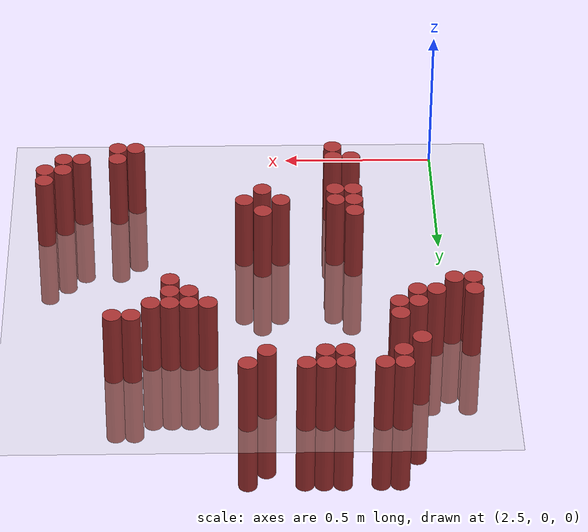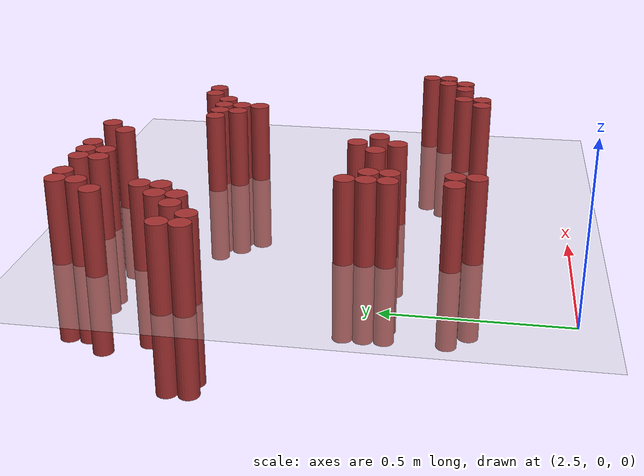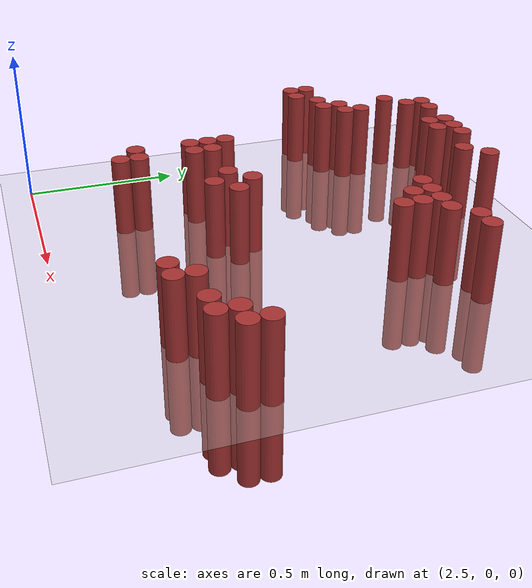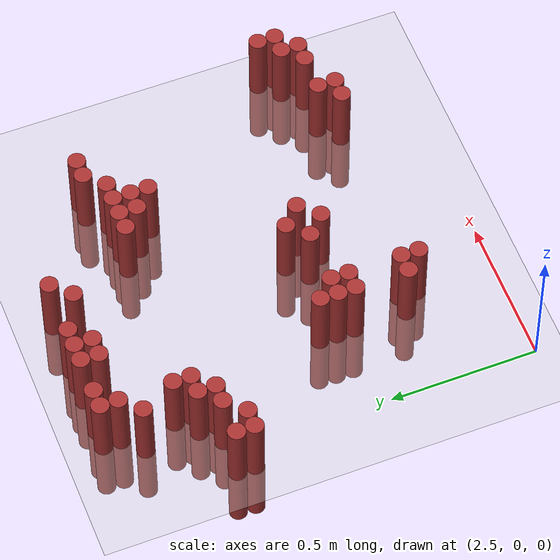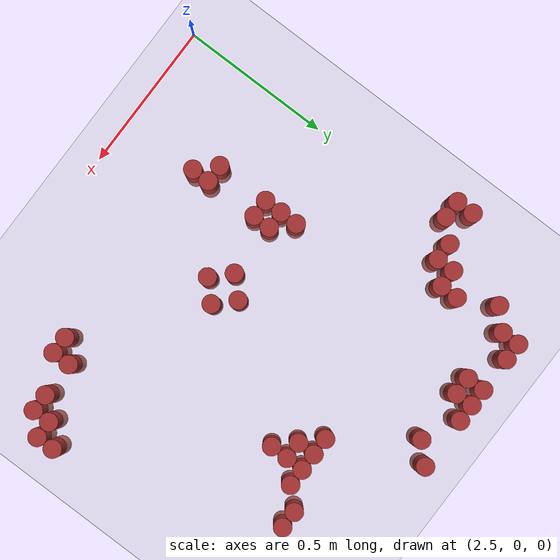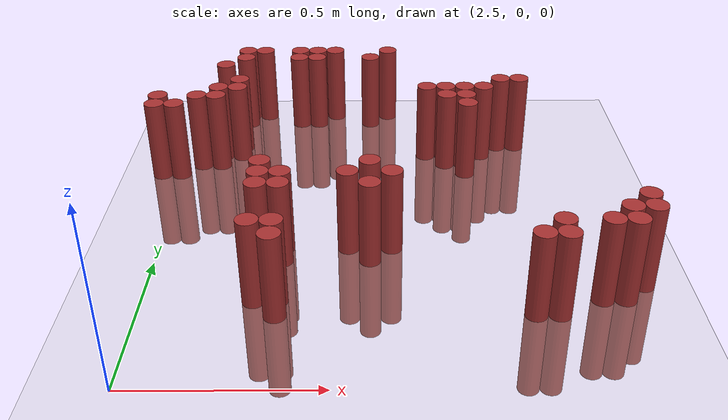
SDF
<sdf version="1.6">
 <world name="default">
  <model name="ground_plane">
   <static>1</static>
   <link name="link">
    <collision name="collision">
     <geometry><plane><normal>0 0 1</normal><size>100 100</size></plane></geometry>
     <surface><friction><ode><mu>100</mu><mu2>50</mu2></ode></friction></surface>
    </collision>
    <visual name="visual">
     <cast_shadows>0</cast_shadows>
     <geometry><plane><normal>0 0 1</normal><size>100 100</size></plane></geometry>
     <material>
      <script><uri>file://media/materials/scripts/gazebo.material</uri><name>Gazebo/Grey</name></script>
     </material>
    </visual>
   </link>
  </model>
  <model name="unit_cylinder_151">
   <static>1</static>
   <pose>2.670000 1.410000 0.000000 0.000000 0.000000 0.000000</pose>
   <link name="link">
    <inertial>
     <mass>1</mass>
     <inertia><ixx>0.145833</ixx><ixy>0</ixy><ixz>0</ixz><iyy>0.145833</iyy><iyz>0</iyz><izz>0.125</izz></inertia>
    </inertial>
    <collision name="collision">
     <geometry><cylinder><radius>0.030000</radius><length>0.5</length></cylinder></geometry>
    </collision>
    <visual name="visual">
     <geometry><cylinder><radius>0.030000</radius><length>0.5</length></cylinder></geometry>
     <material>
      <ambient>0.648000 0.192000 0.192000 1</ambient>
      <diffuse>0.648000 0.192000 0.192000 1</diffuse>
     </material>
     <material>
      <script><name>Gazebo/Grey</name><uri>file://media/materials/scripts/gazebo.material</uri></script>
     </material>
    </visual>
   </link>
  </model>
  <model name="unit_cylinder_152">
   <static>1</static>
   <pose>2.730000 1.410000 0.000000 0.000000 0.000000 0.000000</pose>
   <link name="link">
    <inertial>
     <mass>1</mass>
     <inertia><ixx>0.145833</ixx><ixy>0</ixy><ixz>0</ixz><iyy>0.145833</iyy><iyz>0</iyz><izz>0.125</izz></inertia>
    </inertial>
    <collision name="collision">
     <geometry><cylinder><radius>0.030000</radius><length>0.5</length></cylinder></geometry>
    </collision>
    <visual name="visual">
     <geometry><cylinder><radius>0.030000</radius><length>0.5</length></cylinder></geometry>
     <material>
      <ambient>0.648000 0.192000 0.192000 1</ambient>
      <diffuse>0.648000 0.192000 0.192000 1</diffuse>
     </material>
     <material>
      <script><name>Gazebo/Grey</name><uri>file://media/materials/scripts/gazebo.material</uri></script>
     </material>
    </visual>
   </link>
  </model>
  <model name="unit_cylinder_153">
   <static>1</static>
   <pose>2.850000 1.410000 0.000000 0.000000 0.000000 0.000000</pose>
   <link name="link">
    <inertial>
     <mass>1</mass>
     <inertia><ixx>0.145833</ixx><ixy>0</ixy><ixz>0</ixz><iyy>0.145833</iyy><iyz>0</iyz><izz>0.125</izz></inertia>
    </inertial>
    <collision name="collision">
     <geometry><cylinder><radius>0.030000</radius><length>0.5</length></cylinder></geometry>
    </collision>
    <visual name="visual">
     <geometry><cylinder><radius>0.030000</radius><length>0.5</length></cylinder></geometry>
     <material>
      <ambient>0.648000 0.192000 0.192000 1</ambient>
      <diffuse>0.648000 0.192000 0.192000 1</diffuse>
     </material>
     <material>
      <script><name>Gazebo/Grey</name><uri>file://media/materials/scripts/gazebo.material</uri></script>
     </material>
    </visual>
   </link>
  </model>
  <model name="unit_cylinder_154">
   <static>1</static>
   <pose>2.910000 1.410000 0.000000 0.000000 0.000000 0.000000</pose>
   <link name="link">
    <inertial>
     <mass>1</mass>
     <inertia><ixx>0.145833</ixx><ixy>0</ixy><ixz>0</ixz><iyy>0.145833</iyy><iyz>0</iyz><izz>0.125</izz></inertia>
    </inertial>
    <collision name="collision">
     <geometry><cylinder><radius>0.030000</radius><length>0.5</length></cylinder></geometry>
    </collision>
    <visual name="visual">
     <geometry><cylinder><radius>0.030000</radius><length>0.5</length></cylinder></geometry>
     <material>
      <ambient>0.648000 0.192000 0.192000 1</ambient>
      <diffuse>0.648000 0.192000 0.192000 1</diffuse>
     </material>
     <material>
      <script><name>Gazebo/Grey</name><uri>file://media/materials/scripts/gazebo.material</uri></script>
     </material>
    </visual>
   </link>
  </model>
  <model name="unit_cylinder_155">
   <static>1</static>
   <pose>2.970000 1.410000 0.000000 0.000000 0.000000 0.000000</pose>
   <link name="link">
    <inertial>
     <mass>1</mass>
     <inertia><ixx>0.145833</ixx><ixy>0</ixy><ixz>0</ixz><iyy>0.145833</iyy><iyz>0</iyz><izz>0.125</izz></inertia>
    </inertial>
    <collision name="collision">
     <geometry><cylinder><radius>0.030000</radius><length>0.5</length></cylinder></geometry>
    </collision>
    <visual name="visual">
     <geometry><cylinder><radius>0.030000</radius><length>0.5</length></cylinder></geometry>
     <material>
      <ambient>0.648000 0.192000 0.192000 1</ambient>
      <diffuse>0.648000 0.192000 0.192000 1</diffuse>
     </material>
     <material>
      <script><name>Gazebo/Grey</name><uri>file://media/materials/scripts/gazebo.material</uri></script>
     </material>
    </visual>
   </link>
  </model>
  <model name="unit_cylinder_156">
   <static>1</static>
   <pose>3.150000 1.410000 0.000000 0.000000 0.000000 0.000000</pose>
   <link name="link">
    <inertial>
     <mass>1</mass>
     <inertia><ixx>0.145833</ixx><ixy>0</ixy><ixz>0</ixz><iyy>0.145833</iyy><iyz>0</iyz><izz>0.125</izz></inertia>
    </inertial>
    <collision name="collision">
     <geometry><cylinder><radius>0.030000</radius><length>0.5</length></cylinder></geometry>
    </collision>
    <visual name="visual">
     <geometry><cylinder><radius>0.030000</radius><length>0.5</length></cylinder></geometry>
     <material>
      <ambient>0.648000 0.192000 0.192000 1</ambient>
      <diffuse>0.648000 0.192000 0.192000 1</diffuse>
     </material>
     <material>
      <script><name>Gazebo/Grey</name><uri>file://media/materials/scripts/gazebo.material</uri></script>
     </material>
    </visual>
   </link>
  </model>
  <model name="unit_cylinder_159">
   <static>1</static>
   <pose>2.670000 1.350000 0.000000 0.000000 0.000000 0.000000</pose>
   <link name="link">
    <inertial>
     <mass>1</mass>
     <inertia><ixx>0.145833</ixx><ixy>0</ixy><ixz>0</ixz><iyy>0.145833</iyy><iyz>0</iyz><izz>0.125</izz></inertia>
    </inertial>
    <collision name="collision">
     <geometry><cylinder><radius>0.030000</radius><length>0.5</length></cylinder></geometry>
    </collision>
    <visual name="visual">
     <geometry><cylinder><radius>0.030000</radius><length>0.5</length></cylinder></geometry>
     <material>
      <ambient>0.648000 0.192000 0.192000 1</ambient>
      <diffuse>0.648000 0.192000 0.192000 1</diffuse>
     </material>
     <material>
      <script><name>Gazebo/Grey</name><uri>file://media/materials/scripts/gazebo.material</uri></script>
     </material>
    </visual>
   </link>
  </model>
  <model name="unit_cylinder_160">
   <static>1</static>
   <pose>2.850000 1.350000 0.000000 0.000000 0.000000 0.000000</pose>
   <link name="link">
    <inertial>
     <mass>1</mass>
     <inertia><ixx>0.145833</ixx><ixy>0</ixy><ixz>0</ixz><iyy>0.145833</iyy><iyz>0</iyz><izz>0.125</izz></inertia>
    </inertial>
    <collision name="collision">
     <geometry><cylinder><radius>0.030000</radius><length>0.5</length></cylinder></geometry>
    </collision>
    <visual name="visual">
     <geometry><cylinder><radius>0.030000</radius><length>0.5</length></cylinder></geometry>
     <material>
      <ambient>0.648000 0.192000 0.192000 1</ambient>
      <diffuse>0.648000 0.192000 0.192000 1</diffuse>
     </material>
     <material>
      <script><name>Gazebo/Grey</name><uri>file://media/materials/scripts/gazebo.material</uri></script>
     </material>
    </visual>
   </link>
  </model>
  <model name="unit_cylinder_161">
   <static>1</static>
   <pose>2.910000 1.350000 0.000000 0.000000 0.000000 0.000000</pose>
   <link name="link">
    <inertial>
     <mass>1</mass>
     <inertia><ixx>0.145833</ixx><ixy>0</ixy><ixz>0</ixz><iyy>0.145833</iyy><iyz>0</iyz><izz>0.125</izz></inertia>
    </inertial>
    <collision name="collision">
     <geometry><cylinder><radius>0.030000</radius><length>0.5</length></cylinder></geometry>
    </collision>
    <visual name="visual">
     <geometry><cylinder><radius>0.030000</radius><length>0.5</length></cylinder></geometry>
     <material>
      <ambient>0.648000 0.192000 0.192000 1</ambient>
      <diffuse>0.648000 0.192000 0.192000 1</diffuse>
     </material>
     <material>
      <script><name>Gazebo/Grey</name><uri>file://media/materials/scripts/gazebo.material</uri></script>
     </material>
    </visual>
   </link>
  </model>
  <model name="unit_cylinder_162">
   <static>1</static>
   <pose>3.090000 1.350000 0.000000 0.000000 0.000000 0.000000</pose>
   <link name="link">
    <inertial>
     <mass>1</mass>
     <inertia><ixx>0.145833</ixx><ixy>0</ixy><ixz>0</ixz><iyy>0.145833</iyy><iyz>0</iyz><izz>0.125</izz></inertia>
    </inertial>
    <collision name="collision">
     <geometry><cylinder><radius>0.030000</radius><length>0.5</length></cylinder></geometry>
    </collision>
    <visual name="visual">
     <geometry><cylinder><radius>0.030000</radius><length>0.5</length></cylinder></geometry>
     <material>
      <ambient>0.648000 0.192000 0.192000 1</ambient>
      <diffuse>0.648000 0.192000 0.192000 1</diffuse>
     </material>
     <material>
      <script><name>Gazebo/Grey</name><uri>file://media/materials/scripts/gazebo.material</uri></script>
     </material>
    </visual>
   </link>
  </model>
  <model name="unit_cylinder_165">
   <static>1</static>
   <pose>2.610000 1.290000 0.000000 0.000000 0.000000 0.000000</pose>
   <link name="link">
    <inertial>
     <mass>1</mass>
     <inertia><ixx>0.145833</ixx><ixy>0</ixy><ixz>0</ixz><iyy>0.145833</iyy><iyz>0</iyz><izz>0.125</izz></inertia>
    </inertial>
    <collision name="collision">
     <geometry><cylinder><radius>0.030000</radius><length>0.5</length></cylinder></geometry>
    </collision>
    <visual name="visual">
     <geometry><cylinder><radius>0.030000</radius><length>0.5</length></cylinder></geometry>
     <material>
      <ambient>0.648000 0.192000 0.192000 1</ambient>
      <diffuse>0.648000 0.192000 0.192000 1</diffuse>
     </material>
     <material>
      <script><name>Gazebo/Grey</name><uri>file://media/materials/scripts/gazebo.material</uri></script>
     </material>
    </visual>
   </link>
  </model>
  <model name="unit_cylinder_171">
   <static>1</static>
   <pose>2.670000 1.170000 0.000000 0.000000 0.000000 0.000000</pose>
   <link name="link">
    <inertial>
     <mass>1</mass>
     <inertia><ixx>0.145833</ixx><ixy>0</ixy><ixz>0</ixz><iyy>0.145833</iyy><iyz>0</iyz><izz>0.125</izz></inertia>
    </inertial>
    <collision name="collision">
     <geometry><cylinder><radius>0.030000</radius><length>0.5</length></cylinder></geometry>
    </collision>
    <visual name="visual">
     <geometry><cylinder><radius>0.030000</radius><length>0.5</length></cylinder></geometry>
     <material>
      <ambient>0.648000 0.192000 0.192000 1</ambient>
      <diffuse>0.648000 0.192000 0.192000 1</diffuse>
     </material>
     <material>
      <script><name>Gazebo/Grey</name><uri>file://media/materials/scripts/gazebo.material</uri></script>
     </material>
    </visual>
   </link>
  </model>
  <model name="unit_cylinder_172">
   <static>1</static>
   <pose>3.510000 1.170000 0.000000 0.000000 0.000000 0.000000</pose>
   <link name="link">
    <inertial>
     <mass>1</mass>
     <inertia><ixx>0.145833</ixx><ixy>0</ixy><ixz>0</ixz><iyy>0.145833</iyy><iyz>0</iyz><izz>0.125</izz></inertia>
    </inertial>
    <collision name="collision">
     <geometry><cylinder><radius>0.030000</radius><length>0.5</length></cylinder></geometry>
    </collision>
    <visual name="visual">
     <geometry><cylinder><radius>0.030000</radius><length>0.5</length></cylinder></geometry>
     <material>
      <ambient>0.648000 0.192000 0.192000 1</ambient>
      <diffuse>0.648000 0.192000 0.192000 1</diffuse>
     </material>
     <material>
      <script><name>Gazebo/Grey</name><uri>file://media/materials/scripts/gazebo.material</uri></script>
     </material>
    </visual>
   </link>
  </model>
  <model name="unit_cylinder_173">
   <static>1</static>
   <pose>3.570000 1.170000 0.000000 0.000000 0.000000 0.000000</pose>
   <link name="link">
    <inertial>
     <mass>1</mass>
     <inertia><ixx>0.145833</ixx><ixy>0</ixy><ixz>0</ixz><iyy>0.145833</iyy><iyz>0</iyz><izz>0.125</izz></inertia>
    </inertial>
    <collision name="collision">
     <geometry><cylinder><radius>0.030000</radius><length>0.5</length></cylinder></geometry>
    </collision>
    <visual name="visual">
     <geometry><cylinder><radius>0.030000</radius><length>0.5</length></cylinder></geometry>
     <material>
      <ambient>0.648000 0.192000 0.192000 1</ambient>
      <diffuse>0.648000 0.192000 0.192000 1</diffuse>
     </material>
     <material>
      <script><name>Gazebo/Grey</name><uri>file://media/materials/scripts/gazebo.material</uri></script>
     </material>
    </visual>
   </link>
  </model>
  <model name="unit_cylinder_176">
   <static>1</static>
   <pose>2.610000 1.110000 0.000000 0.000000 0.000000 0.000000</pose>
   <link name="link">
    <inertial>
     <mass>1</mass>
     <inertia><ixx>0.145833</ixx><ixy>0</ixy><ixz>0</ixz><iyy>0.145833</iyy><iyz>0</iyz><izz>0.125</izz></inertia>
    </inertial>
    <collision name="collision">
     <geometry><cylinder><radius>0.030000</radius><length>0.5</length></cylinder></geometry>
    </collision>
    <visual name="visual">
     <geometry><cylinder><radius>0.030000</radius><length>0.5</length></cylinder></geometry>
     <material>
      <ambient>0.648000 0.192000 0.192000 1</ambient>
      <diffuse>0.648000 0.192000 0.192000 1</diffuse>
     </material>
     <material>
      <script><name>Gazebo/Grey</name><uri>file://media/materials/scripts/gazebo.material</uri></script>
     </material>
    </visual>
   </link>
  </model>
  <model name="unit_cylinder_177">
   <static>1</static>
   <pose>2.670000 1.110000 0.000000 0.000000 0.000000 0.000000</pose>
   <link name="link">
    <inertial>
     <mass>1</mass>
     <inertia><ixx>0.145833</ixx><ixy>0</ixy><ixz>0</ixz><iyy>0.145833</iyy><iyz>0</iyz><izz>0.125</izz></inertia>
    </inertial>
    <collision name="collision">
     <geometry><cylinder><radius>0.030000</radius><length>0.5</length></cylinder></geometry>
    </collision>
    <visual name="visual">
     <geometry><cylinder><radius>0.030000</radius><length>0.5</length></cylinder></geometry>
     <material>
      <ambient>0.648000 0.192000 0.192000 1</ambient>
      <diffuse>0.648000 0.192000 0.192000 1</diffuse>
     </material>
     <material>
      <script><name>Gazebo/Grey</name><uri>file://media/materials/scripts/gazebo.material</uri></script>
     </material>
    </visual>
   </link>
  </model>
  <model name="unit_cylinder_178">
   <static>1</static>
   <pose>3.270000 1.110000 0.000000 0.000000 0.000000 0.000000</pose>
   <link name="link">
    <inertial>
     <mass>1</mass>
     <inertia><ixx>0.145833</ixx><ixy>0</ixy><ixz>0</ixz><iyy>0.145833</iyy><iyz>0</iyz><izz>0.125</izz></inertia>
    </inertial>
    <collision name="collision">
     <geometry><cylinder><radius>0.030000</radius><length>0.5</length></cylinder></geometry>
    </collision>
    <visual name="visual">
     <geometry><cylinder><radius>0.030000</radius><length>0.5</length></cylinder></geometry>
     <material>
      <ambient>0.648000 0.192000 0.192000 1</ambient>
      <diffuse>0.648000 0.192000 0.192000 1</diffuse>
     </material>
     <material>
      <script><name>Gazebo/Grey</name><uri>file://media/materials/scripts/gazebo.material</uri></script>
     </material>
    </visual>
   </link>
  </model>
  <model name="unit_cylinder_179">
   <static>1</static>
   <pose>3.330000 1.110000 0.000000 0.000000 0.000000 0.000000</pose>
   <link name="link">
    <inertial>
     <mass>1</mass>
     <inertia><ixx>0.145833</ixx><ixy>0</ixy><ixz>0</ixz><iyy>0.145833</iyy><iyz>0</iyz><izz>0.125</izz></inertia>
    </inertial>
    <collision name="collision">
     <geometry><cylinder><radius>0.030000</radius><length>0.5</length></cylinder></geometry>
    </collision>
    <visual name="visual">
     <geometry><cylinder><radius>0.030000</radius><length>0.5</length></cylinder></geometry>
     <material>
      <ambient>0.648000 0.192000 0.192000 1</ambient>
      <diffuse>0.648000 0.192000 0.192000 1</diffuse>
     </material>
     <material>
      <script><name>Gazebo/Grey</name><uri>file://media/materials/scripts/gazebo.material</uri></script>
     </material>
    </visual>
   </link>
  </model>
  <model name="unit_cylinder_180">
   <static>1</static>
   <pose>3.390000 1.110000 0.000000 0.000000 0.000000 0.000000</pose>
   <link name="link">
    <inertial>
     <mass>1</mass>
     <inertia><ixx>0.145833</ixx><ixy>0</ixy><ixz>0</ixz><iyy>0.145833</iyy><iyz>0</iyz><izz>0.125</izz></inertia>
    </inertial>
    <collision name="collision">
     <geometry><cylinder><radius>0.030000</radius><length>0.5</length></cylinder></geometry>
    </collision>
    <visual name="visual">
     <geometry><cylinder><radius>0.030000</radius><length>0.5</length></cylinder></geometry>
     <material>
      <ambient>0.648000 0.192000 0.192000 1</ambient>
      <diffuse>0.648000 0.192000 0.192000 1</diffuse>
     </material>
     <material>
      <script><name>Gazebo/Grey</name><uri>file://media/materials/scripts/gazebo.material</uri></script>
     </material>
    </visual>
   </link>
  </model>
  <model name="unit_cylinder_181">
   <static>1</static>
   <pose>3.450000 1.110000 0.000000 0.000000 0.000000 0.000000</pose>
   <link name="link">
    <inertial>
     <mass>1</mass>
     <inertia><ixx>0.145833</ixx><ixy>0</ixy><ixz>0</ixz><iyy>0.145833</iyy><iyz>0</iyz><izz>0.125</izz></inertia>
    </inertial>
    <collision name="collision">
     <geometry><cylinder><radius>0.030000</radius><length>0.5</length></cylinder></geometry>
    </collision>
    <visual name="visual">
     <geometry><cylinder><radius>0.030000</radius><length>0.5</length></cylinder></geometry>
     <material>
      <ambient>0.648000 0.192000 0.192000 1</ambient>
      <diffuse>0.648000 0.192000 0.192000 1</diffuse>
     </material>
     <material>
      <script><name>Gazebo/Grey</name><uri>file://media/materials/scripts/gazebo.material</uri></script>
     </material>
    </visual>
   </link>
  </model>
  <model name="unit_cylinder_185">
   <static>1</static>
   <pose>2.430000 1.050000 0.000000 0.000000 0.000000 0.000000</pose>
   <link name="link">
    <inertial>
     <mass>1</mass>
     <inertia><ixx>0.145833</ixx><ixy>0</ixy><ixz>0</ixz><iyy>0.145833</iyy><iyz>0</iyz><izz>0.125</izz></inertia>
    </inertial>
    <collision name="collision">
     <geometry><cylinder><radius>0.030000</radius><length>0.5</length></cylinder></geometry>
    </collision>
    <visual name="visual">
     <geometry><cylinder><radius>0.030000</radius><length>0.5</length></cylinder></geometry>
     <material>
      <ambient>0.648000 0.192000 0.192000 1</ambient>
      <diffuse>0.648000 0.192000 0.192000 1</diffuse>
     </material>
     <material>
      <script><name>Gazebo/Grey</name><uri>file://media/materials/scripts/gazebo.material</uri></script>
     </material>
    </visual>
   </link>
  </model>
  <model name="unit_cylinder_186">
   <static>1</static>
   <pose>2.550000 1.050000 0.000000 0.000000 0.000000 0.000000</pose>
   <link name="link">
    <inertial>
     <mass>1</mass>
     <inertia><ixx>0.145833</ixx><ixy>0</ixy><ixz>0</ixz><iyy>0.145833</iyy><iyz>0</iyz><izz>0.125</izz></inertia>
    </inertial>
    <collision name="collision">
     <geometry><cylinder><radius>0.030000</radius><length>0.5</length></cylinder></geometry>
    </collision>
    <visual name="visual">
     <geometry><cylinder><radius>0.030000</radius><length>0.5</length></cylinder></geometry>
     <material>
      <ambient>0.648000 0.192000 0.192000 1</ambient>
      <diffuse>0.648000 0.192000 0.192000 1</diffuse>
     </material>
     <material>
      <script><name>Gazebo/Grey</name><uri>file://media/materials/scripts/gazebo.material</uri></script>
     </material>
    </visual>
   </link>
  </model>
  <model name="unit_cylinder_187">
   <static>1</static>
   <pose>2.610000 1.050000 0.000000 0.000000 0.000000 0.000000</pose>
   <link name="link">
    <inertial>
     <mass>1</mass>
     <inertia><ixx>0.145833</ixx><ixy>0</ixy><ixz>0</ixz><iyy>0.145833</iyy><iyz>0</iyz><izz>0.125</izz></inertia>
    </inertial>
    <collision name="collision">
     <geometry><cylinder><radius>0.030000</radius><length>0.5</length></cylinder></geometry>
    </collision>
    <visual name="visual">
     <geometry><cylinder><radius>0.030000</radius><length>0.5</length></cylinder></geometry>
     <material>
      <ambient>0.648000 0.192000 0.192000 1</ambient>
      <diffuse>0.648000 0.192000 0.192000 1</diffuse>
     </material>
     <material>
      <script><name>Gazebo/Grey</name><uri>file://media/materials/scripts/gazebo.material</uri></script>
     </material>
    </visual>
   </link>
  </model>
  <model name="unit_cylinder_188">
   <static>1</static>
   <pose>3.330000 1.050000 0.000000 0.000000 0.000000 0.000000</pose>
   <link name="link">
    <inertial>
     <mass>1</mass>
     <inertia><ixx>0.145833</ixx><ixy>0</ixy><ixz>0</ixz><iyy>0.145833</iyy><iyz>0</iyz><izz>0.125</izz></inertia>
    </inertial>
    <collision name="collision">
     <geometry><cylinder><radius>0.030000</radius><length>0.5</length></cylinder></geometry>
    </collision>
    <visual name="visual">
     <geometry><cylinder><radius>0.030000</radius><length>0.5</length></cylinder></geometry>
     <material>
      <ambient>0.648000 0.192000 0.192000 1</ambient>
      <diffuse>0.648000 0.192000 0.192000 1</diffuse>
     </material>
     <material>
      <script><name>Gazebo/Grey</name><uri>file://media/materials/scripts/gazebo.material</uri></script>
     </material>
    </visual>
   </link>
  </model>
  <model name="unit_cylinder_189">
   <static>1</static>
   <pose>3.390000 1.050000 0.000000 0.000000 0.000000 0.000000</pose>
   <link name="link">
    <inertial>
     <mass>1</mass>
     <inertia><ixx>0.145833</ixx><ixy>0</ixy><ixz>0</ixz><iyy>0.145833</iyy><iyz>0</iyz><izz>0.125</izz></inertia>
    </inertial>
    <collision name="collision">
     <geometry><cylinder><radius>0.030000</radius><length>0.5</length></cylinder></geometry>
    </collision>
    <visual name="visual">
     <geometry><cylinder><radius>0.030000</radius><length>0.5</length></cylinder></geometry>
     <material>
      <ambient>0.648000 0.192000 0.192000 1</ambient>
      <diffuse>0.648000 0.192000 0.192000 1</diffuse>
     </material>
     <material>
      <script><name>Gazebo/Grey</name><uri>file://media/materials/scripts/gazebo.material</uri></script>
     </material>
    </visual>
   </link>
  </model>
  <model name="unit_cylinder_192">
   <static>1</static>
   <pose>2.430000 0.990000 0.000000 0.000000 0.000000 0.000000</pose>
   <link name="link">
    <inertial>
     <mass>1</mass>
     <inertia><ixx>0.145833</ixx><ixy>0</ixy><ixz>0</ixz><iyy>0.145833</iyy><iyz>0</iyz><izz>0.125</izz></inertia>
    </inertial>
    <collision name="collision">
     <geometry><cylinder><radius>0.030000</radius><length>0.5</length></cylinder></geometry>
    </collision>
    <visual name="visual">
     <geometry><cylinder><radius>0.030000</radius><length>0.5</length></cylinder></geometry>
     <material>
      <ambient>0.648000 0.192000 0.192000 1</ambient>
      <diffuse>0.648000 0.192000 0.192000 1</diffuse>
     </material>
     <material>
      <script><name>Gazebo/Grey</name><uri>file://media/materials/scripts/gazebo.material</uri></script>
     </material>
    </visual>
   </link>
  </model>
  <model name="unit_cylinder_193">
   <static>1</static>
   <pose>2.490000 0.990000 0.000000 0.000000 0.000000 0.000000</pose>
   <link name="link">
    <inertial>
     <mass>1</mass>
     <inertia><ixx>0.145833</ixx><ixy>0</ixy><ixz>0</ixz><iyy>0.145833</iyy><iyz>0</iyz><izz>0.125</izz></inertia>
    </inertial>
    <collision name="collision">
     <geometry><cylinder><radius>0.030000</radius><length>0.5</length></cylinder></geometry>
    </collision>
    <visual name="visual">
     <geometry><cylinder><radius>0.030000</radius><length>0.5</length></cylinder></geometry>
     <material>
      <ambient>0.648000 0.192000 0.192000 1</ambient>
      <diffuse>0.648000 0.192000 0.192000 1</diffuse>
     </material>
     <material>
      <script><name>Gazebo/Grey</name><uri>file://media/materials/scripts/gazebo.material</uri></script>
     </material>
    </visual>
   </link>
  </model>
  <model name="unit_cylinder_194">
   <static>1</static>
   <pose>3.390000 0.990000 0.000000 0.000000 0.000000 0.000000</pose>
   <link name="link">
    <inertial>
     <mass>1</mass>
     <inertia><ixx>0.145833</ixx><ixy>0</ixy><ixz>0</ixz><iyy>0.145833</iyy><iyz>0</iyz><izz>0.125</izz></inertia>
    </inertial>
    <collision name="collision">
     <geometry><cylinder><radius>0.030000</radius><length>0.5</length></cylinder></geometry>
    </collision>
    <visual name="visual">
     <geometry><cylinder><radius>0.030000</radius><length>0.5</length></cylinder></geometry>
     <material>
      <ambient>0.648000 0.192000 0.192000 1</ambient>
      <diffuse>0.648000 0.192000 0.192000 1</diffuse>
     </material>
     <material>
      <script><name>Gazebo/Grey</name><uri>file://media/materials/scripts/gazebo.material</uri></script>
     </material>
    </visual>
   </link>
  </model>
  <model name="unit_cylinder_210">
   <static>1</static>
   <pose>2.790000 0.630000 0.000000 0.000000 0.000000 0.000000</pose>
   <link name="link">
    <inertial>
     <mass>1</mass>
     <inertia><ixx>0.145833</ixx><ixy>0</ixy><ixz>0</ixz><iyy>0.145833</iyy><iyz>0</iyz><izz>0.125</izz></inertia>
    </inertial>
    <collision name="collision">
     <geometry><cylinder><radius>0.030000</radius><length>0.5</length></cylinder></geometry>
    </collision>
    <visual name="visual">
     <geometry><cylinder><radius>0.030000</radius><length>0.5</length></cylinder></geometry>
     <material>
      <ambient>0.648000 0.192000 0.192000 1</ambient>
      <diffuse>0.648000 0.192000 0.192000 1</diffuse>
     </material>
     <material>
      <script><name>Gazebo/Grey</name><uri>file://media/materials/scripts/gazebo.material</uri></script>
     </material>
    </visual>
   </link>
  </model>
  <model name="unit_cylinder_211">
   <static>1</static>
   <pose>3.090000 0.630000 0.000000 0.000000 0.000000 0.000000</pose>
   <link name="link">
    <inertial>
     <mass>1</mass>
     <inertia><ixx>0.145833</ixx><ixy>0</ixy><ixz>0</ixz><iyy>0.145833</iyy><iyz>0</iyz><izz>0.125</izz></inertia>
    </inertial>
    <collision name="collision">
     <geometry><cylinder><radius>0.030000</radius><length>0.5</length></cylinder></geometry>
    </collision>
    <visual name="visual">
     <geometry><cylinder><radius>0.030000</radius><length>0.5</length></cylinder></geometry>
     <material>
      <ambient>0.648000 0.192000 0.192000 1</ambient>
      <diffuse>0.648000 0.192000 0.192000 1</diffuse>
     </material>
     <material>
      <script><name>Gazebo/Grey</name><uri>file://media/materials/scripts/gazebo.material</uri></script>
     </material>
    </visual>
   </link>
  </model>
  <model name="unit_cylinder_213">
   <static>1</static>
   <pose>2.790000 0.570000 0.000000 0.000000 0.000000 0.000000</pose>
   <link name="link">
    <inertial>
     <mass>1</mass>
     <inertia><ixx>0.145833</ixx><ixy>0</ixy><ixz>0</ixz><iyy>0.145833</iyy><iyz>0</iyz><izz>0.125</izz></inertia>
    </inertial>
    <collision name="collision">
     <geometry><cylinder><radius>0.030000</radius><length>0.5</length></cylinder></geometry>
    </collision>
    <visual name="visual">
     <geometry><cylinder><radius>0.030000</radius><length>0.5</length></cylinder></geometry>
     <material>
      <ambient>0.648000 0.192000 0.192000 1</ambient>
      <diffuse>0.648000 0.192000 0.192000 1</diffuse>
     </material>
     <material>
      <script><name>Gazebo/Grey</name><uri>file://media/materials/scripts/gazebo.material</uri></script>
     </material>
    </visual>
   </link>
  </model>
  <model name="unit_cylinder_214">
   <static>1</static>
   <pose>2.850000 0.570000 0.000000 0.000000 0.000000 0.000000</pose>
   <link name="link">
    <inertial>
     <mass>1</mass>
     <inertia><ixx>0.145833</ixx><ixy>0</ixy><ixz>0</ixz><iyy>0.145833</iyy><iyz>0</iyz><izz>0.125</izz></inertia>
    </inertial>
    <collision name="collision">
     <geometry><cylinder><radius>0.030000</radius><length>0.5</length></cylinder></geometry>
    </collision>
    <visual name="visual">
     <geometry><cylinder><radius>0.030000</radius><length>0.5</length></cylinder></geometry>
     <material>
      <ambient>0.648000 0.192000 0.192000 1</ambient>
      <diffuse>0.648000 0.192000 0.192000 1</diffuse>
     </material>
     <material>
      <script><name>Gazebo/Grey</name><uri>file://media/materials/scripts/gazebo.material</uri></script>
     </material>
    </visual>
   </link>
  </model>
  <model name="unit_cylinder_215">
   <static>1</static>
   <pose>3.030000 0.570000 0.000000 0.000000 0.000000 0.000000</pose>
   <link name="link">
    <inertial>
     <mass>1</mass>
     <inertia><ixx>0.145833</ixx><ixy>0</ixy><ixz>0</ixz><iyy>0.145833</iyy><iyz>0</iyz><izz>0.125</izz></inertia>
    </inertial>
    <collision name="collision">
     <geometry><cylinder><radius>0.030000</radius><length>0.5</length></cylinder></geometry>
    </collision>
    <visual name="visual">
     <geometry><cylinder><radius>0.030000</radius><length>0.5</length></cylinder></geometry>
     <material>
      <ambient>0.648000 0.192000 0.192000 1</ambient>
      <diffuse>0.648000 0.192000 0.192000 1</diffuse>
     </material>
     <material>
      <script><name>Gazebo/Grey</name><uri>file://media/materials/scripts/gazebo.material</uri></script>
     </material>
    </visual>
   </link>
  </model>
  <model name="unit_cylinder_216">
   <static>1</static>
   <pose>3.150000 0.570000 0.000000 0.000000 0.000000 0.000000</pose>
   <link name="link">
    <inertial>
     <mass>1</mass>
     <inertia><ixx>0.145833</ixx><ixy>0</ixy><ixz>0</ixz><iyy>0.145833</iyy><iyz>0</iyz><izz>0.125</izz></inertia>
    </inertial>
    <collision name="collision">
     <geometry><cylinder><radius>0.030000</radius><length>0.5</length></cylinder></geometry>
    </collision>
    <visual name="visual">
     <geometry><cylinder><radius>0.030000</radius><length>0.5</length></cylinder></geometry>
     <material>
      <ambient>0.648000 0.192000 0.192000 1</ambient>
      <diffuse>0.648000 0.192000 0.192000 1</diffuse>
     </material>
     <material>
      <script><name>Gazebo/Grey</name><uri>file://media/materials/scripts/gazebo.material</uri></script>
     </material>
    </visual>
   </link>
  </model>
  <model name="unit_cylinder_217">
   <static>1</static>
   <pose>2.790000 0.510000 0.000000 0.000000 0.000000 0.000000</pose>
   <link name="link">
    <inertial>
     <mass>1</mass>
     <inertia><ixx>0.145833</ixx><ixy>0</ixy><ixz>0</ixz><iyy>0.145833</iyy><iyz>0</iyz><izz>0.125</izz></inertia>
    </inertial>
    <collision name="collision">
     <geometry><cylinder><radius>0.030000</radius><length>0.5</length></cylinder></geometry>
    </collision>
    <visual name="visual">
     <geometry><cylinder><radius>0.030000</radius><length>0.5</length></cylinder></geometry>
     <material>
      <ambient>0.648000 0.192000 0.192000 1</ambient>
      <diffuse>0.648000 0.192000 0.192000 1</diffuse>
     </material>
     <material>
      <script><name>Gazebo/Grey</name><uri>file://media/materials/scripts/gazebo.material</uri></script>
     </material>
    </visual>
   </link>
  </model>
  <model name="unit_cylinder_218">
   <static>1</static>
   <pose>2.850000 0.510000 0.000000 0.000000 0.000000 0.000000</pose>
   <link name="link">
    <inertial>
     <mass>1</mass>
     <inertia><ixx>0.145833</ixx><ixy>0</ixy><ixz>0</ixz><iyy>0.145833</iyy><iyz>0</iyz><izz>0.125</izz></inertia>
    </inertial>
    <collision name="collision">
     <geometry><cylinder><radius>0.030000</radius><length>0.5</length></cylinder></geometry>
    </collision>
    <visual name="visual">
     <geometry><cylinder><radius>0.030000</radius><length>0.5</length></cylinder></geometry>
     <material>
      <ambient>0.648000 0.192000 0.192000 1</ambient>
      <diffuse>0.648000 0.192000 0.192000 1</diffuse>
     </material>
     <material>
      <script><name>Gazebo/Grey</name><uri>file://media/materials/scripts/gazebo.material</uri></script>
     </material>
    </visual>
   </link>
  </model>
  <model name="unit_cylinder_219">
   <static>1</static>
   <pose>3.090000 0.510000 0.000000 0.000000 0.000000 0.000000</pose>
   <link name="link">
    <inertial>
     <mass>1</mass>
     <inertia><ixx>0.145833</ixx><ixy>0</ixy><ixz>0</ixz><iyy>0.145833</iyy><iyz>0</iyz><izz>0.125</izz></inertia>
    </inertial>
    <collision name="collision">
     <geometry><cylinder><radius>0.030000</radius><length>0.5</length></cylinder></geometry>
    </collision>
    <visual name="visual">
     <geometry><cylinder><radius>0.030000</radius><length>0.5</length></cylinder></geometry>
     <material>
      <ambient>0.648000 0.192000 0.192000 1</ambient>
      <diffuse>0.648000 0.192000 0.192000 1</diffuse>
     </material>
     <material>
      <script><name>Gazebo/Grey</name><uri>file://media/materials/scripts/gazebo.material</uri></script>
     </material>
    </visual>
   </link>
  </model>
  <model name="unit_cylinder_220">
   <static>1</static>
   <pose>3.810000 0.450000 0.000000 0.000000 0.000000 0.000000</pose>
   <link name="link">
    <inertial>
     <mass>1</mass>
     <inertia><ixx>0.145833</ixx><ixy>0</ixy><ixz>0</ixz><iyy>0.145833</iyy><iyz>0</iyz><izz>0.125</izz></inertia>
    </inertial>
    <collision name="collision">
     <geometry><cylinder><radius>0.030000</radius><length>0.5</length></cylinder></geometry>
    </collision>
    <visual name="visual">
     <geometry><cylinder><radius>0.030000</radius><length>0.5</length></cylinder></geometry>
     <material>
      <ambient>0.648000 0.192000 0.192000 1</ambient>
      <diffuse>0.648000 0.192000 0.192000 1</diffuse>
     </material>
     <material>
      <script><name>Gazebo/Grey</name><uri>file://media/materials/scripts/gazebo.material</uri></script>
     </material>
    </visual>
   </link>
  </model>
  <model name="unit_cylinder_221">
   <static>1</static>
   <pose>3.750000 0.390000 0.000000 0.000000 0.000000 0.000000</pose>
   <link name="link">
    <inertial>
     <mass>1</mass>
     <inertia><ixx>0.145833</ixx><ixy>0</ixy><ixz>0</ixz><iyy>0.145833</iyy><iyz>0</iyz><izz>0.125</izz></inertia>
    </inertial>
    <collision name="collision">
     <geometry><cylinder><radius>0.030000</radius><length>0.5</length></cylinder></geometry>
    </collision>
    <visual name="visual">
     <geometry><cylinder><radius>0.030000</radius><length>0.5</length></cylinder></geometry>
     <material>
      <ambient>0.648000 0.192000 0.192000 1</ambient>
      <diffuse>0.648000 0.192000 0.192000 1</diffuse>
     </material>
     <material>
      <script><name>Gazebo/Grey</name><uri>file://media/materials/scripts/gazebo.material</uri></script>
     </material>
    </visual>
   </link>
  </model>
  <model name="unit_cylinder_222">
   <static>1</static>
   <pose>3.810000 0.390000 0.000000 0.000000 0.000000 0.000000</pose>
   <link name="link">
    <inertial>
     <mass>1</mass>
     <inertia><ixx>0.145833</ixx><ixy>0</ixy><ixz>0</ixz><iyy>0.145833</iyy><iyz>0</iyz><izz>0.125</izz></inertia>
    </inertial>
    <collision name="collision">
     <geometry><cylinder><radius>0.030000</radius><length>0.5</length></cylinder></geometry>
    </collision>
    <visual name="visual">
     <geometry><cylinder><radius>0.030000</radius><length>0.5</length></cylinder></geometry>
     <material>
      <ambient>0.648000 0.192000 0.192000 1</ambient>
      <diffuse>0.648000 0.192000 0.192000 1</diffuse>
     </material>
     <material>
      <script><name>Gazebo/Grey</name><uri>file://media/materials/scripts/gazebo.material</uri></script>
     </material>
    </visual>
   </link>
  </model>
  <model name="unit_cylinder_223">
   <static>1</static>
   <pose>2.790000 0.330000 0.000000 0.000000 0.000000 0.000000</pose>
   <link name="link">
    <inertial>
     <mass>1</mass>
     <inertia><ixx>0.145833</ixx><ixy>0</ixy><ixz>0</ixz><iyy>0.145833</iyy><iyz>0</iyz><izz>0.125</izz></inertia>
    </inertial>
    <collision name="collision">
     <geometry><cylinder><radius>0.030000</radius><length>0.5</length></cylinder></geometry>
    </collision>
    <visual name="visual">
     <geometry><cylinder><radius>0.030000</radius><length>0.5</length></cylinder></geometry>
     <material>
      <ambient>0.648000 0.192000 0.192000 1</ambient>
      <diffuse>0.648000 0.192000 0.192000 1</diffuse>
     </material>
     <material>
      <script><name>Gazebo/Grey</name><uri>file://media/materials/scripts/gazebo.material</uri></script>
     </material>
    </visual>
   </link>
  </model>
  <model name="unit_cylinder_224">
   <static>1</static>
   <pose>2.850000 0.330000 0.000000 0.000000 0.000000 0.000000</pose>
   <link name="link">
    <inertial>
     <mass>1</mass>
     <inertia><ixx>0.145833</ixx><ixy>0</ixy><ixz>0</ixz><iyy>0.145833</iyy><iyz>0</iyz><izz>0.125</izz></inertia>
    </inertial>
    <collision name="collision">
     <geometry><cylinder><radius>0.030000</radius><length>0.5</length></cylinder></geometry>
    </collision>
    <visual name="visual">
     <geometry><cylinder><radius>0.030000</radius><length>0.5</length></cylinder></geometry>
     <material>
      <ambient>0.648000 0.192000 0.192000 1</ambient>
      <diffuse>0.648000 0.192000 0.192000 1</diffuse>
     </material>
     <material>
      <script><name>Gazebo/Grey</name><uri>file://media/materials/scripts/gazebo.material</uri></script>
     </material>
    </visual>
   </link>
  </model>
  <model name="unit_cylinder_225">
   <static>1</static>
   <pose>3.570000 0.330000 0.000000 0.000000 0.000000 0.000000</pose>
   <link name="link">
    <inertial>
     <mass>1</mass>
     <inertia><ixx>0.145833</ixx><ixy>0</ixy><ixz>0</ixz><iyy>0.145833</iyy><iyz>0</iyz><izz>0.125</izz></inertia>
    </inertial>
    <collision name="collision">
     <geometry><cylinder><radius>0.030000</radius><length>0.5</length></cylinder></geometry>
    </collision>
    <visual name="visual">
     <geometry><cylinder><radius>0.030000</radius><length>0.5</length></cylinder></geometry>
     <material>
      <ambient>0.648000 0.192000 0.192000 1</ambient>
      <diffuse>0.648000 0.192000 0.192000 1</diffuse>
     </material>
     <material>
      <script><name>Gazebo/Grey</name><uri>file://media/materials/scripts/gazebo.material</uri></script>
     </material>
    </visual>
   </link>
  </model>
  <model name="unit_cylinder_226">
   <static>1</static>
   <pose>3.690000 0.330000 0.000000 0.000000 0.000000 0.000000</pose>
   <link name="link">
    <inertial>
     <mass>1</mass>
     <inertia><ixx>0.145833</ixx><ixy>0</ixy><ixz>0</ixz><iyy>0.145833</iyy><iyz>0</iyz><izz>0.125</izz></inertia>
    </inertial>
    <collision name="collision">
     <geometry><cylinder><radius>0.030000</radius><length>0.5</length></cylinder></geometry>
    </collision>
    <visual name="visual">
     <geometry><cylinder><radius>0.030000</radius><length>0.5</length></cylinder></geometry>
     <material>
      <ambient>0.648000 0.192000 0.192000 1</ambient>
      <diffuse>0.648000 0.192000 0.192000 1</diffuse>
     </material>
     <material>
      <script><name>Gazebo/Grey</name><uri>file://media/materials/scripts/gazebo.material</uri></script>
     </material>
    </visual>
   </link>
  </model>
  <model name="unit_cylinder_227">
   <static>1</static>
   <pose>3.750000 0.330000 0.000000 0.000000 0.000000 0.000000</pose>
   <link name="link">
    <inertial>
     <mass>1</mass>
     <inertia><ixx>0.145833</ixx><ixy>0</ixy><ixz>0</ixz><iyy>0.145833</iyy><iyz>0</iyz><izz>0.125</izz></inertia>
    </inertial>
    <collision name="collision">
     <geometry><cylinder><radius>0.030000</radius><length>0.5</length></cylinder></geometry>
    </collision>
    <visual name="visual">
     <geometry><cylinder><radius>0.030000</radius><length>0.5</length></cylinder></geometry>
     <material>
      <ambient>0.648000 0.192000 0.192000 1</ambient>
      <diffuse>0.648000 0.192000 0.192000 1</diffuse>
     </material>
     <material>
      <script><name>Gazebo/Grey</name><uri>file://media/materials/scripts/gazebo.material</uri></script>
     </material>
    </visual>
   </link>
  </model>
  <model name="unit_cylinder_230">
   <static>1</static>
   <pose>2.850000 0.270000 0.000000 0.000000 0.000000 0.000000</pose>
   <link name="link">
    <inertial>
     <mass>1</mass>
     <inertia><ixx>0.145833</ixx><ixy>0</ixy><ixz>0</ixz><iyy>0.145833</iyy><iyz>0</iyz><izz>0.125</izz></inertia>
    </inertial>
    <collision name="collision">
     <geometry><cylinder><radius>0.030000</radius><length>0.5</length></cylinder></geometry>
    </collision>
    <visual name="visual">
     <geometry><cylinder><radius>0.030000</radius><length>0.5</length></cylinder></geometry>
     <material>
      <ambient>0.648000 0.192000 0.192000 1</ambient>
      <diffuse>0.648000 0.192000 0.192000 1</diffuse>
     </material>
     <material>
      <script><name>Gazebo/Grey</name><uri>file://media/materials/scripts/gazebo.material</uri></script>
     </material>
    </visual>
   </link>
  </model>
  <model name="unit_cylinder_231">
   <static>1</static>
   <pose>3.510000 0.270000 0.000000 0.000000 0.000000 0.000000</pose>
   <link name="link">
    <inertial>
     <mass>1</mass>
     <inertia><ixx>0.145833</ixx><ixy>0</ixy><ixz>0</ixz><iyy>0.145833</iyy><iyz>0</iyz><izz>0.125</izz></inertia>
    </inertial>
    <collision name="collision">
     <geometry><cylinder><radius>0.030000</radius><length>0.5</length></cylinder></geometry>
    </collision>
    <visual name="visual">
     <geometry><cylinder><radius>0.030000</radius><length>0.5</length></cylinder></geometry>
     <material>
      <ambient>0.648000 0.192000 0.192000 1</ambient>
      <diffuse>0.648000 0.192000 0.192000 1</diffuse>
     </material>
     <material>
      <script><name>Gazebo/Grey</name><uri>file://media/materials/scripts/gazebo.material</uri></script>
     </material>
    </visual>
   </link>
  </model>
  <model name="unit_cylinder_232">
   <static>1</static>
   <pose>3.570000 0.270000 0.000000 0.000000 0.000000 0.000000</pose>
   <link name="link">
    <inertial>
     <mass>1</mass>
     <inertia><ixx>0.145833</ixx><ixy>0</ixy><ixz>0</ixz><iyy>0.145833</iyy><iyz>0</iyz><izz>0.125</izz></inertia>
    </inertial>
    <collision name="collision">
     <geometry><cylinder><radius>0.030000</radius><length>0.5</length></cylinder></geometry>
    </collision>
    <visual name="visual">
     <geometry><cylinder><radius>0.030000</radius><length>0.5</length></cylinder></geometry>
     <material>
      <ambient>0.648000 0.192000 0.192000 1</ambient>
      <diffuse>0.648000 0.192000 0.192000 1</diffuse>
     </material>
     <material>
      <script><name>Gazebo/Grey</name><uri>file://media/materials/scripts/gazebo.material</uri></script>
     </material>
    </visual>
   </link>
  </model>
 </world>
</sdf>
